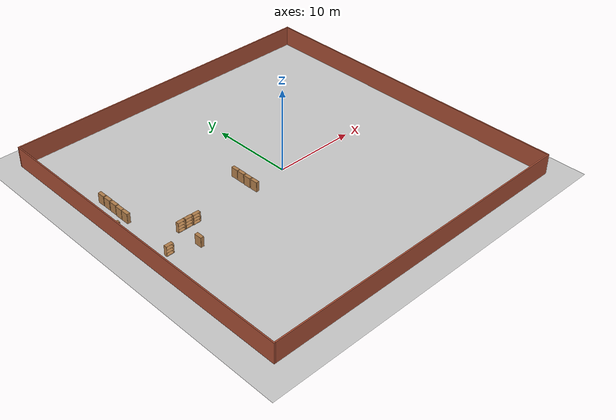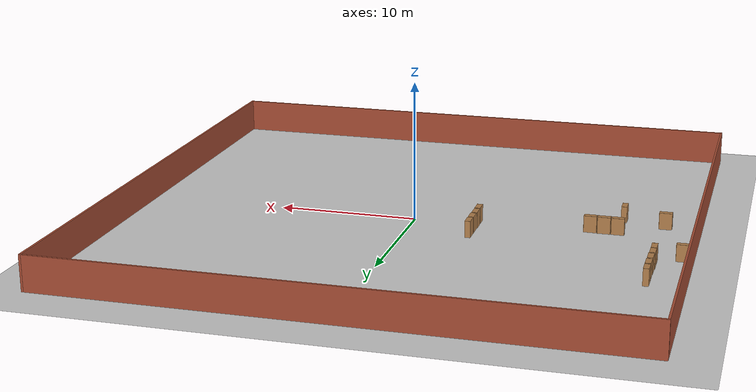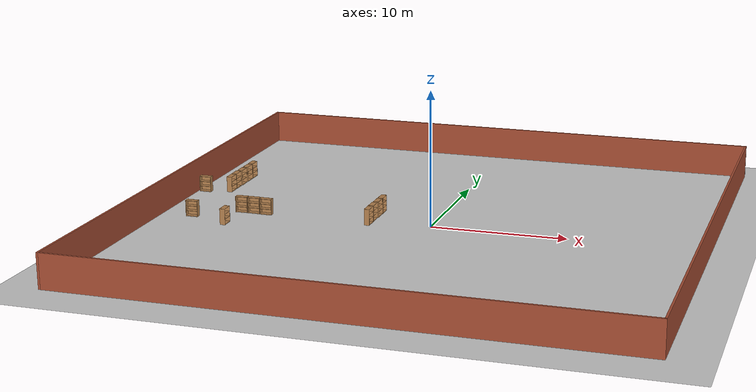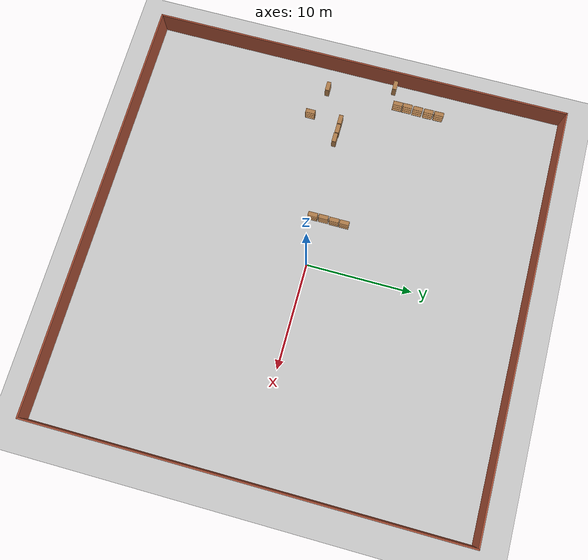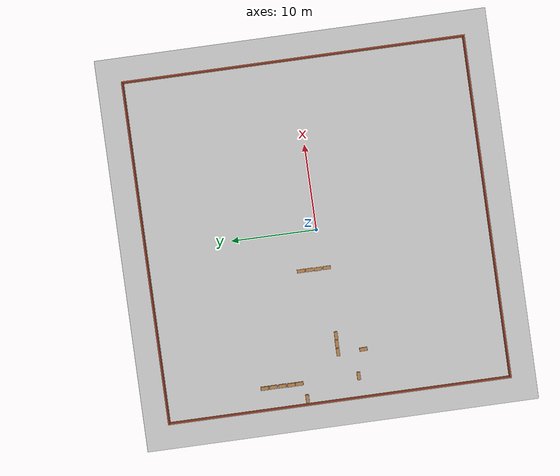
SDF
<sdf version="1.6">
 <world name="default">
  <model name="ground_plane">
   <static>1</static>
   <link name="link">
    <collision name="collision">
     <geometry><plane><normal>0 0 1</normal><size>100 100</size></plane></geometry>
     <surface>
      <contact><collide_bitmask>65535</collide_bitmask></contact>
      <friction><ode><mu>100</mu><mu2>50</mu2></ode></friction>
     </surface>
    </collision>
    <visual name="visual">
     <cast_shadows>0</cast_shadows>
     <geometry><plane><normal>0 0 1</normal><size>100 100</size></plane></geometry>
     <material>
      <script><uri>file://media/materials/scripts/gazebo.material</uri><name>Gazebo/Grey</name></script>
     </material>
    </visual>
   </link>
  </model>
  <model name="bookshelf_clone">
   <static>1</static>
   <link name="link">
    <inertial><mass>1</mass></inertial>
    <collision name="back">
     <pose>0 0.005 0.6 0 -0 0</pose>
     <geometry><box><size>0.9 0.01 1.2</size></box></geometry>
    </collision>
    <visual name="visual1">
     <pose>0 0.005 0.6 0 -0 0</pose>
     <geometry><box><size>0.9 0.01 1.2</size></box></geometry>
     <material>
      <script><uri>file://media/materials/scripts/gazebo.material</uri><name>Gazebo/Wood</name></script>
     </material>
    </visual>
    <collision name="left_side">
     <pose>0.45 -0.195 0.6 0 -0 0</pose>
     <geometry><box><size>0.02 0.4 1.2</size></box></geometry>
    </collision>
    <visual name="visual2">
     <pose>0.45 -0.195 0.6 0 -0 0</pose>
     <geometry><box><size>0.02 0.4 1.2</size></box></geometry>
     <material>
      <script><uri>file://media/materials/scripts/gazebo.material</uri><name>Gazebo/Wood</name></script>
     </material>
    </visual>
    <collision name="right_side">
     <pose>-0.45 -0.195 0.6 0 -0 0</pose>
     <geometry><box><size>0.02 0.4 1.2</size></box></geometry>
    </collision>
    <visual name="visual3">
     <pose>-0.45 -0.195 0.6 0 -0 0</pose>
     <geometry><box><size>0.02 0.4 1.2</size></box></geometry>
     <material>
      <script><uri>file://media/materials/scripts/gazebo.material</uri><name>Gazebo/Wood</name></script>
     </material>
    </visual>
    <collision name="bottom">
     <pose>0 -0.195 0.03 0 -0 0</pose>
     <geometry><box><size>0.88 0.4 0.06</size></box></geometry>
    </collision>
    <visual name="visual4">
     <pose>0 -0.195 0.03 0 -0 0</pose>
     <geometry><box><size>0.88 0.4 0.06</size></box></geometry>
     <material>
      <script><uri>file://media/materials/scripts/gazebo.material</uri><name>Gazebo/Wood</name></script>
     </material>
    </visual>
    <collision name="top">
     <pose>0 -0.195 1.19 0 -0 0</pose>
     <geometry><box><size>0.88 0.4 0.02</size></box></geometry>
    </collision>
    <visual name="visual5">
     <pose>0 -0.195 1.19 0 -0 0</pose>
     <geometry><box><size>0.88 0.4 0.02</size></box></geometry>
     <material>
      <script><uri>file://media/materials/scripts/gazebo.material</uri><name>Gazebo/Wood</name></script>
     </material>
    </visual>
    <collision name="low_shelf">
     <pose>0 -0.195 0.43 0 -0 0</pose>
     <geometry><box><size>0.88 0.4 0.02</size></box></geometry>
    </collision>
    <visual name="visual6">
     <pose>0 -0.195 0.43 0 -0 0</pose>
     <geometry><box><size>0.88 0.4 0.02</size></box></geometry>
     <material>
      <script><uri>file://media/materials/scripts/gazebo.material</uri><name>Gazebo/Wood</name></script>
     </material>
    </visual>
    <collision name="high_shelf">
     <pose>0 -0.195 0.8 0 -0 0</pose>
     <geometry><box><size>0.88 0.4 0.02</size></box></geometry>
    </collision>
    <visual name="visual7">
     <pose>0 -0.195 0.8 0 -0 0</pose>
     <geometry><box><size>0.88 0.4 0.02</size></box></geometry>
     <material>
      <script><uri>file://media/materials/scripts/gazebo.material</uri><name>Gazebo/Wood</name></script>
     </material>
    </visual>
   </link>
   <pose>-17.5274 -2.373 0 0 -0 0</pose>
  </model>
  <model name="bookshelf_clone_clone_0_clone_clone">
   <static>1</static>
   <link name="link">
    <inertial><mass>1</mass></inertial>
    <collision name="back">
     <pose>0 0.005 0.6 0 -0 0</pose>
     <geometry><box><size>0.9 0.01 1.2</size></box></geometry>
    </collision>
    <visual name="visual1">
     <pose>0 0.005 0.6 0 -0 0</pose>
     <geometry><box><size>0.9 0.01 1.2</size></box></geometry>
     <material>
      <script><uri>file://media/materials/scripts/gazebo.material</uri><name>Gazebo/Wood</name></script>
     </material>
    </visual>
    <collision name="left_side">
     <pose>0.45 -0.195 0.6 0 -0 0</pose>
     <geometry><box><size>0.02 0.4 1.2</size></box></geometry>
    </collision>
    <visual name="visual2">
     <pose>0.45 -0.195 0.6 0 -0 0</pose>
     <geometry><box><size>0.02 0.4 1.2</size></box></geometry>
     <material>
      <script><uri>file://media/materials/scripts/gazebo.material</uri><name>Gazebo/Wood</name></script>
     </material>
    </visual>
    <collision name="right_side">
     <pose>-0.45 -0.195 0.6 0 -0 0</pose>
     <geometry><box><size>0.02 0.4 1.2</size></box></geometry>
    </collision>
    <visual name="visual3">
     <pose>-0.45 -0.195 0.6 0 -0 0</pose>
     <geometry><box><size>0.02 0.4 1.2</size></box></geometry>
     <material>
      <script><uri>file://media/materials/scripts/gazebo.material</uri><name>Gazebo/Wood</name></script>
     </material>
    </visual>
    <collision name="bottom">
     <pose>0 -0.195 0.03 0 -0 0</pose>
     <geometry><box><size>0.88 0.4 0.06</size></box></geometry>
    </collision>
    <visual name="visual4">
     <pose>0 -0.195 0.03 0 -0 0</pose>
     <geometry><box><size>0.88 0.4 0.06</size></box></geometry>
     <material>
      <script><uri>file://media/materials/scripts/gazebo.material</uri><name>Gazebo/Wood</name></script>
     </material>
    </visual>
    <collision name="top">
     <pose>0 -0.195 1.19 0 -0 0</pose>
     <geometry><box><size>0.88 0.4 0.02</size></box></geometry>
    </collision>
    <visual name="visual5">
     <pose>0 -0.195 1.19 0 -0 0</pose>
     <geometry><box><size>0.88 0.4 0.02</size></box></geometry>
     <material>
      <script><uri>file://media/materials/scripts/gazebo.material</uri><name>Gazebo/Wood</name></script>
     </material>
    </visual>
    <collision name="low_shelf">
     <pose>0 -0.195 0.43 0 -0 0</pose>
     <geometry><box><size>0.88 0.4 0.02</size></box></geometry>
    </collision>
    <visual name="visual6">
     <pose>0 -0.195 0.43 0 -0 0</pose>
     <geometry><box><size>0.88 0.4 0.02</size></box></geometry>
     <material>
      <script><uri>file://media/materials/scripts/gazebo.material</uri><name>Gazebo/Wood</name></script>
     </material>
    </visual>
    <collision name="high_shelf">
     <pose>0 -0.195 0.8 0 -0 0</pose>
     <geometry><box><size>0.88 0.4 0.02</size></box></geometry>
    </collision>
    <visual name="visual7">
     <pose>0 -0.195 0.8 0 -0 0</pose>
     <geometry><box><size>0.88 0.4 0.02</size></box></geometry>
     <material>
      <script><uri>file://media/materials/scripts/gazebo.material</uri><name>Gazebo/Wood</name></script>
     </material>
    </visual>
   </link>
   <pose>-17.7016 5.36171 0 0 -0 1.58018</pose>
  </model>
  <model name="bookshelf_clone_clone_0_clone_clone_0">
   <static>1</static>
   <link name="link">
    <inertial><mass>1</mass></inertial>
    <collision name="back">
     <pose>0 0.005 0.6 0 -0 0</pose>
     <geometry><box><size>0.9 0.01 1.2</size></box></geometry>
    </collision>
    <visual name="visual1">
     <pose>0 0.005 0.6 0 -0 0</pose>
     <geometry><box><size>0.9 0.01 1.2</size></box></geometry>
     <material>
      <script><uri>file://media/materials/scripts/gazebo.material</uri><name>Gazebo/Wood</name></script>
     </material>
    </visual>
    <collision name="left_side">
     <pose>0.45 -0.195 0.6 0 -0 0</pose>
     <geometry><box><size>0.02 0.4 1.2</size></box></geometry>
    </collision>
    <visual name="visual2">
     <pose>0.45 -0.195 0.6 0 -0 0</pose>
     <geometry><box><size>0.02 0.4 1.2</size></box></geometry>
     <material>
      <script><uri>file://media/materials/scripts/gazebo.material</uri><name>Gazebo/Wood</name></script>
     </material>
    </visual>
    <collision name="right_side">
     <pose>-0.45 -0.195 0.6 0 -0 0</pose>
     <geometry><box><size>0.02 0.4 1.2</size></box></geometry>
    </collision>
    <visual name="visual3">
     <pose>-0.45 -0.195 0.6 0 -0 0</pose>
     <geometry><box><size>0.02 0.4 1.2</size></box></geometry>
     <material>
      <script><uri>file://media/materials/scripts/gazebo.material</uri><name>Gazebo/Wood</name></script>
     </material>
    </visual>
    <collision name="bottom">
     <pose>0 -0.195 0.03 0 -0 0</pose>
     <geometry><box><size>0.88 0.4 0.06</size></box></geometry>
    </collision>
    <visual name="visual4">
     <pose>0 -0.195 0.03 0 -0 0</pose>
     <geometry><box><size>0.88 0.4 0.06</size></box></geometry>
     <material>
      <script><uri>file://media/materials/scripts/gazebo.material</uri><name>Gazebo/Wood</name></script>
     </material>
    </visual>
    <collision name="top">
     <pose>0 -0.195 1.19 0 -0 0</pose>
     <geometry><box><size>0.88 0.4 0.02</size></box></geometry>
    </collision>
    <visual name="visual5">
     <pose>0 -0.195 1.19 0 -0 0</pose>
     <geometry><box><size>0.88 0.4 0.02</size></box></geometry>
     <material>
      <script><uri>file://media/materials/scripts/gazebo.material</uri><name>Gazebo/Wood</name></script>
     </material>
    </visual>
    <collision name="low_shelf">
     <pose>0 -0.195 0.43 0 -0 0</pose>
     <geometry><box><size>0.88 0.4 0.02</size></box></geometry>
    </collision>
    <visual name="visual6">
     <pose>0 -0.195 0.43 0 -0 0</pose>
     <geometry><box><size>0.88 0.4 0.02</size></box></geometry>
     <material>
      <script><uri>file://media/materials/scripts/gazebo.material</uri><name>Gazebo/Wood</name></script>
     </material>
    </visual>
    <collision name="high_shelf">
     <pose>0 -0.195 0.8 0 -0 0</pose>
     <geometry><box><size>0.88 0.4 0.02</size></box></geometry>
    </collision>
    <visual name="visual7">
     <pose>0 -0.195 0.8 0 -0 0</pose>
     <geometry><box><size>0.88 0.4 0.02</size></box></geometry>
     <material>
      <script><uri>file://media/materials/scripts/gazebo.material</uri><name>Gazebo/Wood</name></script>
     </material>
    </visual>
   </link>
   <pose>-17.6926 4.40593 0 0 -0 1.58018</pose>
  </model>
  <model name="bookshelf_clone_clone_0_clone_clone_1">
   <static>1</static>
   <link name="link">
    <inertial><mass>1</mass></inertial>
    <collision name="back">
     <pose>0 0.005 0.6 0 -0 0</pose>
     <geometry><box><size>0.9 0.01 1.2</size></box></geometry>
    </collision>
    <visual name="visual1">
     <pose>0 0.005 0.6 0 -0 0</pose>
     <geometry><box><size>0.9 0.01 1.2</size></box></geometry>
     <material>
      <script><uri>file://media/materials/scripts/gazebo.material</uri><name>Gazebo/Wood</name></script>
     </material>
    </visual>
    <collision name="left_side">
     <pose>0.45 -0.195 0.6 0 -0 0</pose>
     <geometry><box><size>0.02 0.4 1.2</size></box></geometry>
    </collision>
    <visual name="visual2">
     <pose>0.45 -0.195 0.6 0 -0 0</pose>
     <geometry><box><size>0.02 0.4 1.2</size></box></geometry>
     <material>
      <script><uri>file://media/materials/scripts/gazebo.material</uri><name>Gazebo/Wood</name></script>
     </material>
    </visual>
    <collision name="right_side">
     <pose>-0.45 -0.195 0.6 0 -0 0</pose>
     <geometry><box><size>0.02 0.4 1.2</size></box></geometry>
    </collision>
    <visual name="visual3">
     <pose>-0.45 -0.195 0.6 0 -0 0</pose>
     <geometry><box><size>0.02 0.4 1.2</size></box></geometry>
     <material>
      <script><uri>file://media/materials/scripts/gazebo.material</uri><name>Gazebo/Wood</name></script>
     </material>
    </visual>
    <collision name="bottom">
     <pose>0 -0.195 0.03 0 -0 0</pose>
     <geometry><box><size>0.88 0.4 0.06</size></box></geometry>
    </collision>
    <visual name="visual4">
     <pose>0 -0.195 0.03 0 -0 0</pose>
     <geometry><box><size>0.88 0.4 0.06</size></box></geometry>
     <material>
      <script><uri>file://media/materials/scripts/gazebo.material</uri><name>Gazebo/Wood</name></script>
     </material>
    </visual>
    <collision name="top">
     <pose>0 -0.195 1.19 0 -0 0</pose>
     <geometry><box><size>0.88 0.4 0.02</size></box></geometry>
    </collision>
    <visual name="visual5">
     <pose>0 -0.195 1.19 0 -0 0</pose>
     <geometry><box><size>0.88 0.4 0.02</size></box></geometry>
     <material>
      <script><uri>file://media/materials/scripts/gazebo.material</uri><name>Gazebo/Wood</name></script>
     </material>
    </visual>
    <collision name="low_shelf">
     <pose>0 -0.195 0.43 0 -0 0</pose>
     <geometry><box><size>0.88 0.4 0.02</size></box></geometry>
    </collision>
    <visual name="visual6">
     <pose>0 -0.195 0.43 0 -0 0</pose>
     <geometry><box><size>0.88 0.4 0.02</size></box></geometry>
     <material>
      <script><uri>file://media/materials/scripts/gazebo.material</uri><name>Gazebo/Wood</name></script>
     </material>
    </visual>
    <collision name="high_shelf">
     <pose>0 -0.195 0.8 0 -0 0</pose>
     <geometry><box><size>0.88 0.4 0.02</size></box></geometry>
    </collision>
    <visual name="visual7">
     <pose>0 -0.195 0.8 0 -0 0</pose>
     <geometry><box><size>0.88 0.4 0.02</size></box></geometry>
     <material>
      <script><uri>file://media/materials/scripts/gazebo.material</uri><name>Gazebo/Wood</name></script>
     </material>
    </visual>
   </link>
   <pose>-17.6741 6.39169 0 0 -0 1.58018</pose>
  </model>
  <model name="bookshelf_clone_clone_0_clone_clone_2">
   <static>1</static>
   <link name="link">
    <inertial><mass>1</mass></inertial>
    <collision name="back">
     <pose>0 0.005 0.6 0 -0 0</pose>
     <geometry><box><size>0.9 0.01 1.2</size></box></geometry>
    </collision>
    <visual name="visual1">
     <pose>0 0.005 0.6 0 -0 0</pose>
     <geometry><box><size>0.9 0.01 1.2</size></box></geometry>
     <material>
      <script><uri>file://media/materials/scripts/gazebo.material</uri><name>Gazebo/Wood</name></script>
     </material>
    </visual>
    <collision name="left_side">
     <pose>0.45 -0.195 0.6 0 -0 0</pose>
     <geometry><box><size>0.02 0.4 1.2</size></box></geometry>
    </collision>
    <visual name="visual2">
     <pose>0.45 -0.195 0.6 0 -0 0</pose>
     <geometry><box><size>0.02 0.4 1.2</size></box></geometry>
     <material>
      <script><uri>file://media/materials/scripts/gazebo.material</uri><name>Gazebo/Wood</name></script>
     </material>
    </visual>
    <collision name="right_side">
     <pose>-0.45 -0.195 0.6 0 -0 0</pose>
     <geometry><box><size>0.02 0.4 1.2</size></box></geometry>
    </collision>
    <visual name="visual3">
     <pose>-0.45 -0.195 0.6 0 -0 0</pose>
     <geometry><box><size>0.02 0.4 1.2</size></box></geometry>
     <material>
      <script><uri>file://media/materials/scripts/gazebo.material</uri><name>Gazebo/Wood</name></script>
     </material>
    </visual>
    <collision name="bottom">
     <pose>0 -0.195 0.03 0 -0 0</pose>
     <geometry><box><size>0.88 0.4 0.06</size></box></geometry>
    </collision>
    <visual name="visual4">
     <pose>0 -0.195 0.03 0 -0 0</pose>
     <geometry><box><size>0.88 0.4 0.06</size></box></geometry>
     <material>
      <script><uri>file://media/materials/scripts/gazebo.material</uri><name>Gazebo/Wood</name></script>
     </material>
    </visual>
    <collision name="top">
     <pose>0 -0.195 1.19 0 -0 0</pose>
     <geometry><box><size>0.88 0.4 0.02</size></box></geometry>
    </collision>
    <visual name="visual5">
     <pose>0 -0.195 1.19 0 -0 0</pose>
     <geometry><box><size>0.88 0.4 0.02</size></box></geometry>
     <material>
      <script><uri>file://media/materials/scripts/gazebo.material</uri><name>Gazebo/Wood</name></script>
     </material>
    </visual>
    <collision name="low_shelf">
     <pose>0 -0.195 0.43 0 -0 0</pose>
     <geometry><box><size>0.88 0.4 0.02</size></box></geometry>
    </collision>
    <visual name="visual6">
     <pose>0 -0.195 0.43 0 -0 0</pose>
     <geometry><box><size>0.88 0.4 0.02</size></box></geometry>
     <material>
      <script><uri>file://media/materials/scripts/gazebo.material</uri><name>Gazebo/Wood</name></script>
     </material>
    </visual>
    <collision name="high_shelf">
     <pose>0 -0.195 0.8 0 -0 0</pose>
     <geometry><box><size>0.88 0.4 0.02</size></box></geometry>
    </collision>
    <visual name="visual7">
     <pose>0 -0.195 0.8 0 -0 0</pose>
     <geometry><box><size>0.88 0.4 0.02</size></box></geometry>
     <material>
      <script><uri>file://media/materials/scripts/gazebo.material</uri><name>Gazebo/Wood</name></script>
     </material>
    </visual>
   </link>
   <pose>-17.6649 7.44946 0 0 -0 1.58018</pose>
  </model>
  <model name="bookshelf_clone_clone_0_clone_clone_3">
   <static>1</static>
   <link name="link">
    <inertial><mass>1</mass></inertial>
    <collision name="back">
     <pose>0 0.005 0.6 0 -0 0</pose>
     <geometry><box><size>0.9 0.01 1.2</size></box></geometry>
    </collision>
    <visual name="visual1">
     <pose>0 0.005 0.6 0 -0 0</pose>
     <geometry><box><size>0.9 0.01 1.2</size></box></geometry>
     <material>
      <script><uri>file://media/materials/scripts/gazebo.material</uri><name>Gazebo/Wood</name></script>
     </material>
    </visual>
    <collision name="left_side">
     <pose>0.45 -0.195 0.6 0 -0 0</pose>
     <geometry><box><size>0.02 0.4 1.2</size></box></geometry>
    </collision>
    <visual name="visual2">
     <pose>0.45 -0.195 0.6 0 -0 0</pose>
     <geometry><box><size>0.02 0.4 1.2</size></box></geometry>
     <material>
      <script><uri>file://media/materials/scripts/gazebo.material</uri><name>Gazebo/Wood</name></script>
     </material>
    </visual>
    <collision name="right_side">
     <pose>-0.45 -0.195 0.6 0 -0 0</pose>
     <geometry><box><size>0.02 0.4 1.2</size></box></geometry>
    </collision>
    <visual name="visual3">
     <pose>-0.45 -0.195 0.6 0 -0 0</pose>
     <geometry><box><size>0.02 0.4 1.2</size></box></geometry>
     <material>
      <script><uri>file://media/materials/scripts/gazebo.material</uri><name>Gazebo/Wood</name></script>
     </material>
    </visual>
    <collision name="bottom">
     <pose>0 -0.195 0.03 0 -0 0</pose>
     <geometry><box><size>0.88 0.4 0.06</size></box></geometry>
    </collision>
    <visual name="visual4">
     <pose>0 -0.195 0.03 0 -0 0</pose>
     <geometry><box><size>0.88 0.4 0.06</size></box></geometry>
     <material>
      <script><uri>file://media/materials/scripts/gazebo.material</uri><name>Gazebo/Wood</name></script>
     </material>
    </visual>
    <collision name="top">
     <pose>0 -0.195 1.19 0 -0 0</pose>
     <geometry><box><size>0.88 0.4 0.02</size></box></geometry>
    </collision>
    <visual name="visual5">
     <pose>0 -0.195 1.19 0 -0 0</pose>
     <geometry><box><size>0.88 0.4 0.02</size></box></geometry>
     <material>
      <script><uri>file://media/materials/scripts/gazebo.material</uri><name>Gazebo/Wood</name></script>
     </material>
    </visual>
    <collision name="low_shelf">
     <pose>0 -0.195 0.43 0 -0 0</pose>
     <geometry><box><size>0.88 0.4 0.02</size></box></geometry>
    </collision>
    <visual name="visual6">
     <pose>0 -0.195 0.43 0 -0 0</pose>
     <geometry><box><size>0.88 0.4 0.02</size></box></geometry>
     <material>
      <script><uri>file://media/materials/scripts/gazebo.material</uri><name>Gazebo/Wood</name></script>
     </material>
    </visual>
    <collision name="high_shelf">
     <pose>0 -0.195 0.8 0 -0 0</pose>
     <geometry><box><size>0.88 0.4 0.02</size></box></geometry>
    </collision>
    <visual name="visual7">
     <pose>0 -0.195 0.8 0 -0 0</pose>
     <geometry><box><size>0.88 0.4 0.02</size></box></geometry>
     <material>
      <script><uri>file://media/materials/scripts/gazebo.material</uri><name>Gazebo/Wood</name></script>
     </material>
    </visual>
   </link>
   <pose>-17.6741 8.4702 0 0 -0 1.58018</pose>
  </model>
  <model name="bookshelf_clone_clone_3">
   <static>1</static>
   <link name="link">
    <inertial><mass>1</mass></inertial>
    <collision name="back">
     <pose>0 0.005 0.6 0 -0 0</pose>
     <geometry><box><size>0.9 0.01 1.2</size></box></geometry>
    </collision>
    <visual name="visual1">
     <pose>0 0.005 0.6 0 -0 0</pose>
     <geometry><box><size>0.9 0.01 1.2</size></box></geometry>
     <material>
      <script><uri>file://media/materials/scripts/gazebo.material</uri><name>Gazebo/Wood</name></script>
     </material>
    </visual>
    <collision name="left_side">
     <pose>0.45 -0.195 0.6 0 -0 0</pose>
     <geometry><box><size>0.02 0.4 1.2</size></box></geometry>
    </collision>
    <visual name="visual2">
     <pose>0.45 -0.195 0.6 0 -0 0</pose>
     <geometry><box><size>0.02 0.4 1.2</size></box></geometry>
     <material>
      <script><uri>file://media/materials/scripts/gazebo.material</uri><name>Gazebo/Wood</name></script>
     </material>
    </visual>
    <collision name="right_side">
     <pose>-0.45 -0.195 0.6 0 -0 0</pose>
     <geometry><box><size>0.02 0.4 1.2</size></box></geometry>
    </collision>
    <visual name="visual3">
     <pose>-0.45 -0.195 0.6 0 -0 0</pose>
     <geometry><box><size>0.02 0.4 1.2</size></box></geometry>
     <material>
      <script><uri>file://media/materials/scripts/gazebo.material</uri><name>Gazebo/Wood</name></script>
     </material>
    </visual>
    <collision name="bottom">
     <pose>0 -0.195 0.03 0 -0 0</pose>
     <geometry><box><size>0.88 0.4 0.06</size></box></geometry>
    </collision>
    <visual name="visual4">
     <pose>0 -0.195 0.03 0 -0 0</pose>
     <geometry><box><size>0.88 0.4 0.06</size></box></geometry>
     <material>
      <script><uri>file://media/materials/scripts/gazebo.material</uri><name>Gazebo/Wood</name></script>
     </material>
    </visual>
    <collision name="top">
     <pose>0 -0.195 1.19 0 -0 0</pose>
     <geometry><box><size>0.88 0.4 0.02</size></box></geometry>
    </collision>
    <visual name="visual5">
     <pose>0 -0.195 1.19 0 -0 0</pose>
     <geometry><box><size>0.88 0.4 0.02</size></box></geometry>
     <material>
      <script><uri>file://media/materials/scripts/gazebo.material</uri><name>Gazebo/Wood</name></script>
     </material>
    </visual>
    <collision name="low_shelf">
     <pose>0 -0.195 0.43 0 -0 0</pose>
     <geometry><box><size>0.88 0.4 0.02</size></box></geometry>
    </collision>
    <visual name="visual6">
     <pose>0 -0.195 0.43 0 -0 0</pose>
     <geometry><box><size>0.88 0.4 0.02</size></box></geometry>
     <material>
      <script><uri>file://media/materials/scripts/gazebo.material</uri><name>Gazebo/Wood</name></script>
     </material>
    </visual>
    <collision name="high_shelf">
     <pose>0 -0.195 0.8 0 -0 0</pose>
     <geometry><box><size>0.88 0.4 0.02</size></box></geometry>
    </collision>
    <visual name="visual7">
     <pose>0 -0.195 0.8 0 -0 0</pose>
     <geometry><box><size>0.88 0.4 0.02</size></box></geometry>
     <material>
      <script><uri>file://media/materials/scripts/gazebo.material</uri><name>Gazebo/Wood</name></script>
     </material>
    </visual>
   </link>
   <pose>-19.329 3.89641 0 0 -0 0</pose>
  </model>
  <model name="bookshelf_clone_clone_0_clone_clone_0_clone">
   <static>1</static>
   <link name="link">
    <inertial><mass>1</mass></inertial>
    <collision name="back">
     <pose>0 0.005 0.6 0 -0 0</pose>
     <geometry><box><size>0.9 0.01 1.2</size></box></geometry>
    </collision>
    <visual name="visual1">
     <pose>0 0.005 0.6 0 -0 0</pose>
     <geometry><box><size>0.9 0.01 1.2</size></box></geometry>
     <material>
      <script><uri>file://media/materials/scripts/gazebo.material</uri><name>Gazebo/Wood</name></script>
     </material>
    </visual>
    <collision name="left_side">
     <pose>0.45 -0.195 0.6 0 -0 0</pose>
     <geometry><box><size>0.02 0.4 1.2</size></box></geometry>
    </collision>
    <visual name="visual2">
     <pose>0.45 -0.195 0.6 0 -0 0</pose>
     <geometry><box><size>0.02 0.4 1.2</size></box></geometry>
     <material>
      <script><uri>file://media/materials/scripts/gazebo.material</uri><name>Gazebo/Wood</name></script>
     </material>
    </visual>
    <collision name="right_side">
     <pose>-0.45 -0.195 0.6 0 -0 0</pose>
     <geometry><box><size>0.02 0.4 1.2</size></box></geometry>
    </collision>
    <visual name="visual3">
     <pose>-0.45 -0.195 0.6 0 -0 0</pose>
     <geometry><box><size>0.02 0.4 1.2</size></box></geometry>
     <material>
      <script><uri>file://media/materials/scripts/gazebo.material</uri><name>Gazebo/Wood</name></script>
     </material>
    </visual>
    <collision name="bottom">
     <pose>0 -0.195 0.03 0 -0 0</pose>
     <geometry><box><size>0.88 0.4 0.06</size></box></geometry>
    </collision>
    <visual name="visual4">
     <pose>0 -0.195 0.03 0 -0 0</pose>
     <geometry><box><size>0.88 0.4 0.06</size></box></geometry>
     <material>
      <script><uri>file://media/materials/scripts/gazebo.material</uri><name>Gazebo/Wood</name></script>
     </material>
    </visual>
    <collision name="top">
     <pose>0 -0.195 1.19 0 -0 0</pose>
     <geometry><box><size>0.88 0.4 0.02</size></box></geometry>
    </collision>
    <visual name="visual5">
     <pose>0 -0.195 1.19 0 -0 0</pose>
     <geometry><box><size>0.88 0.4 0.02</size></box></geometry>
     <material>
      <script><uri>file://media/materials/scripts/gazebo.material</uri><name>Gazebo/Wood</name></script>
     </material>
    </visual>
    <collision name="low_shelf">
     <pose>0 -0.195 0.43 0 -0 0</pose>
     <geometry><box><size>0.88 0.4 0.02</size></box></geometry>
    </collision>
    <visual name="visual6">
     <pose>0 -0.195 0.43 0 -0 0</pose>
     <geometry><box><size>0.88 0.4 0.02</size></box></geometry>
     <material>
      <script><uri>file://media/materials/scripts/gazebo.material</uri><name>Gazebo/Wood</name></script>
     </material>
    </visual>
    <collision name="high_shelf">
     <pose>0 -0.195 0.8 0 -0 0</pose>
     <geometry><box><size>0.88 0.4 0.02</size></box></geometry>
    </collision>
    <visual name="visual7">
     <pose>0 -0.195 0.8 0 -0 0</pose>
     <geometry><box><size>0.88 0.4 0.02</size></box></geometry>
     <material>
      <script><uri>file://media/materials/scripts/gazebo.material</uri><name>Gazebo/Wood</name></script>
     </material>
    </visual>
   </link>
   <pose>-14.7167 -3.5316 0 0 -0 1.58018</pose>
  </model>
  <model name="bookshelf_clone_clone_2_clone">
   <static>1</static>
   <link name="link">
    <inertial><mass>1</mass></inertial>
    <collision name="back">
     <pose>0 0.005 0.6 0 -0 0</pose>
     <geometry><box><size>0.9 0.01 1.2</size></box></geometry>
    </collision>
    <visual name="visual1">
     <pose>0 0.005 0.6 0 -0 0</pose>
     <geometry><box><size>0.9 0.01 1.2</size></box></geometry>
     <material>
      <script><uri>file://media/materials/scripts/gazebo.material</uri><name>Gazebo/Wood</name></script>
     </material>
    </visual>
    <collision name="left_side">
     <pose>0.45 -0.195 0.6 0 -0 0</pose>
     <geometry><box><size>0.02 0.4 1.2</size></box></geometry>
    </collision>
    <visual name="visual2">
     <pose>0.45 -0.195 0.6 0 -0 0</pose>
     <geometry><box><size>0.02 0.4 1.2</size></box></geometry>
     <material>
      <script><uri>file://media/materials/scripts/gazebo.material</uri><name>Gazebo/Wood</name></script>
     </material>
    </visual>
    <collision name="right_side">
     <pose>-0.45 -0.195 0.6 0 -0 0</pose>
     <geometry><box><size>0.02 0.4 1.2</size></box></geometry>
    </collision>
    <visual name="visual3">
     <pose>-0.45 -0.195 0.6 0 -0 0</pose>
     <geometry><box><size>0.02 0.4 1.2</size></box></geometry>
     <material>
      <script><uri>file://media/materials/scripts/gazebo.material</uri><name>Gazebo/Wood</name></script>
     </material>
    </visual>
    <collision name="bottom">
     <pose>0 -0.195 0.03 0 -0 0</pose>
     <geometry><box><size>0.88 0.4 0.06</size></box></geometry>
    </collision>
    <visual name="visual4">
     <pose>0 -0.195 0.03 0 -0 0</pose>
     <geometry><box><size>0.88 0.4 0.06</size></box></geometry>
     <material>
      <script><uri>file://media/materials/scripts/gazebo.material</uri><name>Gazebo/Wood</name></script>
     </material>
    </visual>
    <collision name="top">
     <pose>0 -0.195 1.19 0 -0 0</pose>
     <geometry><box><size>0.88 0.4 0.02</size></box></geometry>
    </collision>
    <visual name="visual5">
     <pose>0 -0.195 1.19 0 -0 0</pose>
     <geometry><box><size>0.88 0.4 0.02</size></box></geometry>
     <material>
      <script><uri>file://media/materials/scripts/gazebo.material</uri><name>Gazebo/Wood</name></script>
     </material>
    </visual>
    <collision name="low_shelf">
     <pose>0 -0.195 0.43 0 -0 0</pose>
     <geometry><box><size>0.88 0.4 0.02</size></box></geometry>
    </collision>
    <visual name="visual6">
     <pose>0 -0.195 0.43 0 -0 0</pose>
     <geometry><box><size>0.88 0.4 0.02</size></box></geometry>
     <material>
      <script><uri>file://media/materials/scripts/gazebo.material</uri><name>Gazebo/Wood</name></script>
     </material>
    </visual>
    <collision name="high_shelf">
     <pose>0 -0.195 0.8 0 -0 0</pose>
     <geometry><box><size>0.88 0.4 0.02</size></box></geometry>
    </collision>
    <visual name="visual7">
     <pose>0 -0.195 0.8 0 -0 0</pose>
     <geometry><box><size>0.88 0.4 0.02</size></box></geometry>
     <material>
      <script><uri>file://media/materials/scripts/gazebo.material</uri><name>Gazebo/Wood</name></script>
     </material>
    </visual>
   </link>
   <pose>-14.4458 -0.359166 0 0 -0 0</pose>
  </model>
  <model name="bookshelf_clone_clone_2_clone_0">
   <static>1</static>
   <link name="link">
    <inertial><mass>1</mass></inertial>
    <collision name="back">
     <pose>0 0.005 0.6 0 -0 0</pose>
     <geometry><box><size>0.9 0.01 1.2</size></box></geometry>
    </collision>
    <visual name="visual1">
     <pose>0 0.005 0.6 0 -0 0</pose>
     <geometry><box><size>0.9 0.01 1.2</size></box></geometry>
     <material>
      <script><uri>file://media/materials/scripts/gazebo.material</uri><name>Gazebo/Wood</name></script>
     </material>
    </visual>
    <collision name="left_side">
     <pose>0.45 -0.195 0.6 0 -0 0</pose>
     <geometry><box><size>0.02 0.4 1.2</size></box></geometry>
    </collision>
    <visual name="visual2">
     <pose>0.45 -0.195 0.6 0 -0 0</pose>
     <geometry><box><size>0.02 0.4 1.2</size></box></geometry>
     <material>
      <script><uri>file://media/materials/scripts/gazebo.material</uri><name>Gazebo/Wood</name></script>
     </material>
    </visual>
    <collision name="right_side">
     <pose>-0.45 -0.195 0.6 0 -0 0</pose>
     <geometry><box><size>0.02 0.4 1.2</size></box></geometry>
    </collision>
    <visual name="visual3">
     <pose>-0.45 -0.195 0.6 0 -0 0</pose>
     <geometry><box><size>0.02 0.4 1.2</size></box></geometry>
     <material>
      <script><uri>file://media/materials/scripts/gazebo.material</uri><name>Gazebo/Wood</name></script>
     </material>
    </visual>
    <collision name="bottom">
     <pose>0 -0.195 0.03 0 -0 0</pose>
     <geometry><box><size>0.88 0.4 0.06</size></box></geometry>
    </collision>
    <visual name="visual4">
     <pose>0 -0.195 0.03 0 -0 0</pose>
     <geometry><box><size>0.88 0.4 0.06</size></box></geometry>
     <material>
      <script><uri>file://media/materials/scripts/gazebo.material</uri><name>Gazebo/Wood</name></script>
     </material>
    </visual>
    <collision name="top">
     <pose>0 -0.195 1.19 0 -0 0</pose>
     <geometry><box><size>0.88 0.4 0.02</size></box></geometry>
    </collision>
    <visual name="visual5">
     <pose>0 -0.195 1.19 0 -0 0</pose>
     <geometry><box><size>0.88 0.4 0.02</size></box></geometry>
     <material>
      <script><uri>file://media/materials/scripts/gazebo.material</uri><name>Gazebo/Wood</name></script>
     </material>
    </visual>
    <collision name="low_shelf">
     <pose>0 -0.195 0.43 0 -0 0</pose>
     <geometry><box><size>0.88 0.4 0.02</size></box></geometry>
    </collision>
    <visual name="visual6">
     <pose>0 -0.195 0.43 0 -0 0</pose>
     <geometry><box><size>0.88 0.4 0.02</size></box></geometry>
     <material>
      <script><uri>file://media/materials/scripts/gazebo.material</uri><name>Gazebo/Wood</name></script>
     </material>
    </visual>
    <collision name="high_shelf">
     <pose>0 -0.195 0.8 0 -0 0</pose>
     <geometry><box><size>0.88 0.4 0.02</size></box></geometry>
    </collision>
    <visual name="visual7">
     <pose>0 -0.195 0.8 0 -0 0</pose>
     <geometry><box><size>0.88 0.4 0.02</size></box></geometry>
     <material>
      <script><uri>file://media/materials/scripts/gazebo.material</uri><name>Gazebo/Wood</name></script>
     </material>
    </visual>
   </link>
   <pose>-13.4772 -0.35819 0 0 -0 0</pose>
  </model>
  <model name="bookshelf_clone_clone_2_clone_1">
   <static>1</static>
   <link name="link">
    <inertial><mass>1</mass></inertial>
    <collision name="back">
     <pose>0 0.005 0.6 0 -0 0</pose>
     <geometry><box><size>0.9 0.01 1.2</size></box></geometry>
    </collision>
    <visual name="visual1">
     <pose>0 0.005 0.6 0 -0 0</pose>
     <geometry><box><size>0.9 0.01 1.2</size></box></geometry>
     <material>
      <script><uri>file://media/materials/scripts/gazebo.material</uri><name>Gazebo/Wood</name></script>
     </material>
    </visual>
    <collision name="left_side">
     <pose>0.45 -0.195 0.6 0 -0 0</pose>
     <geometry><box><size>0.02 0.4 1.2</size></box></geometry>
    </collision>
    <visual name="visual2">
     <pose>0.45 -0.195 0.6 0 -0 0</pose>
     <geometry><box><size>0.02 0.4 1.2</size></box></geometry>
     <material>
      <script><uri>file://media/materials/scripts/gazebo.material</uri><name>Gazebo/Wood</name></script>
     </material>
    </visual>
    <collision name="right_side">
     <pose>-0.45 -0.195 0.6 0 -0 0</pose>
     <geometry><box><size>0.02 0.4 1.2</size></box></geometry>
    </collision>
    <visual name="visual3">
     <pose>-0.45 -0.195 0.6 0 -0 0</pose>
     <geometry><box><size>0.02 0.4 1.2</size></box></geometry>
     <material>
      <script><uri>file://media/materials/scripts/gazebo.material</uri><name>Gazebo/Wood</name></script>
     </material>
    </visual>
    <collision name="bottom">
     <pose>0 -0.195 0.03 0 -0 0</pose>
     <geometry><box><size>0.88 0.4 0.06</size></box></geometry>
    </collision>
    <visual name="visual4">
     <pose>0 -0.195 0.03 0 -0 0</pose>
     <geometry><box><size>0.88 0.4 0.06</size></box></geometry>
     <material>
      <script><uri>file://media/materials/scripts/gazebo.material</uri><name>Gazebo/Wood</name></script>
     </material>
    </visual>
    <collision name="top">
     <pose>0 -0.195 1.19 0 -0 0</pose>
     <geometry><box><size>0.88 0.4 0.02</size></box></geometry>
    </collision>
    <visual name="visual5">
     <pose>0 -0.195 1.19 0 -0 0</pose>
     <geometry><box><size>0.88 0.4 0.02</size></box></geometry>
     <material>
      <script><uri>file://media/materials/scripts/gazebo.material</uri><name>Gazebo/Wood</name></script>
     </material>
    </visual>
    <collision name="low_shelf">
     <pose>0 -0.195 0.43 0 -0 0</pose>
     <geometry><box><size>0.88 0.4 0.02</size></box></geometry>
    </collision>
    <visual name="visual6">
     <pose>0 -0.195 0.43 0 -0 0</pose>
     <geometry><box><size>0.88 0.4 0.02</size></box></geometry>
     <material>
      <script><uri>file://media/materials/scripts/gazebo.material</uri><name>Gazebo/Wood</name></script>
     </material>
    </visual>
    <collision name="high_shelf">
     <pose>0 -0.195 0.8 0 -0 0</pose>
     <geometry><box><size>0.88 0.4 0.02</size></box></geometry>
    </collision>
    <visual name="visual7">
     <pose>0 -0.195 0.8 0 -0 0</pose>
     <geometry><box><size>0.88 0.4 0.02</size></box></geometry>
     <material>
      <script><uri>file://media/materials/scripts/gazebo.material</uri><name>Gazebo/Wood</name></script>
     </material>
    </visual>
   </link>
   <pose>-12.5139 -0.395559 0 0 -0 0</pose>
  </model>
  <model name="bookshelf_clone_clone_0_clone_clone_0_clone_2">
   <static>1</static>
   <link name="link">
    <inertial><mass>1</mass></inertial>
    <collision name="back">
     <pose>0 0.005 0.6 0 -0 0</pose>
     <geometry><box><size>0.9 0.01 1.2</size></box></geometry>
    </collision>
    <visual name="visual1">
     <pose>0 0.005 0.6 0 -0 0</pose>
     <geometry><box><size>0.9 0.01 1.2</size></box></geometry>
     <material>
      <script><uri>file://media/materials/scripts/gazebo.material</uri><name>Gazebo/Wood</name></script>
     </material>
    </visual>
    <collision name="left_side">
     <pose>0.45 -0.195 0.6 0 -0 0</pose>
     <geometry><box><size>0.02 0.4 1.2</size></box></geometry>
    </collision>
    <visual name="visual2">
     <pose>0.45 -0.195 0.6 0 -0 0</pose>
     <geometry><box><size>0.02 0.4 1.2</size></box></geometry>
     <material>
      <script><uri>file://media/materials/scripts/gazebo.material</uri><name>Gazebo/Wood</name></script>
     </material>
    </visual>
    <collision name="right_side">
     <pose>-0.45 -0.195 0.6 0 -0 0</pose>
     <geometry><box><size>0.02 0.4 1.2</size></box></geometry>
    </collision>
    <visual name="visual3">
     <pose>-0.45 -0.195 0.6 0 -0 0</pose>
     <geometry><box><size>0.02 0.4 1.2</size></box></geometry>
     <material>
      <script><uri>file://media/materials/scripts/gazebo.material</uri><name>Gazebo/Wood</name></script>
     </material>
    </visual>
    <collision name="bottom">
     <pose>0 -0.195 0.03 0 -0 0</pose>
     <geometry><box><size>0.88 0.4 0.06</size></box></geometry>
    </collision>
    <visual name="visual4">
     <pose>0 -0.195 0.03 0 -0 0</pose>
     <geometry><box><size>0.88 0.4 0.06</size></box></geometry>
     <material>
      <script><uri>file://media/materials/scripts/gazebo.material</uri><name>Gazebo/Wood</name></script>
     </material>
    </visual>
    <collision name="top">
     <pose>0 -0.195 1.19 0 -0 0</pose>
     <geometry><box><size>0.88 0.4 0.02</size></box></geometry>
    </collision>
    <visual name="visual5">
     <pose>0 -0.195 1.19 0 -0 0</pose>
     <geometry><box><size>0.88 0.4 0.02</size></box></geometry>
     <material>
      <script><uri>file://media/materials/scripts/gazebo.material</uri><name>Gazebo/Wood</name></script>
     </material>
    </visual>
    <collision name="low_shelf">
     <pose>0 -0.195 0.43 0 -0 0</pose>
     <geometry><box><size>0.88 0.4 0.02</size></box></geometry>
    </collision>
    <visual name="visual6">
     <pose>0 -0.195 0.43 0 -0 0</pose>
     <geometry><box><size>0.88 0.4 0.02</size></box></geometry>
     <material>
      <script><uri>file://media/materials/scripts/gazebo.material</uri><name>Gazebo/Wood</name></script>
     </material>
    </visual>
    <collision name="high_shelf">
     <pose>0 -0.195 0.8 0 -0 0</pose>
     <geometry><box><size>0.88 0.4 0.02</size></box></geometry>
    </collision>
    <visual name="visual7">
     <pose>0 -0.195 0.8 0 -0 0</pose>
     <geometry><box><size>0.88 0.4 0.02</size></box></geometry>
     <material>
      <script><uri>file://media/materials/scripts/gazebo.material</uri><name>Gazebo/Wood</name></script>
     </material>
    </visual>
   </link>
   <pose>-4.71181 2.42279 0 0 -0 1.58018</pose>
  </model>
  <model name="bookshelf_clone_clone_0_clone_clone_0_clone_3">
   <static>1</static>
   <link name="link">
    <inertial><mass>1</mass></inertial>
    <collision name="back">
     <pose>0 0.005 0.6 0 -0 0</pose>
     <geometry><box><size>0.9 0.01 1.2</size></box></geometry>
    </collision>
    <visual name="visual1">
     <pose>0 0.005 0.6 0 -0 0</pose>
     <geometry><box><size>0.9 0.01 1.2</size></box></geometry>
     <material>
      <script><uri>file://media/materials/scripts/gazebo.material</uri><name>Gazebo/Wood</name></script>
     </material>
    </visual>
    <collision name="left_side">
     <pose>0.45 -0.195 0.6 0 -0 0</pose>
     <geometry><box><size>0.02 0.4 1.2</size></box></geometry>
    </collision>
    <visual name="visual2">
     <pose>0.45 -0.195 0.6 0 -0 0</pose>
     <geometry><box><size>0.02 0.4 1.2</size></box></geometry>
     <material>
      <script><uri>file://media/materials/scripts/gazebo.material</uri><name>Gazebo/Wood</name></script>
     </material>
    </visual>
    <collision name="right_side">
     <pose>-0.45 -0.195 0.6 0 -0 0</pose>
     <geometry><box><size>0.02 0.4 1.2</size></box></geometry>
    </collision>
    <visual name="visual3">
     <pose>-0.45 -0.195 0.6 0 -0 0</pose>
     <geometry><box><size>0.02 0.4 1.2</size></box></geometry>
     <material>
      <script><uri>file://media/materials/scripts/gazebo.material</uri><name>Gazebo/Wood</name></script>
     </material>
    </visual>
    <collision name="bottom">
     <pose>0 -0.195 0.03 0 -0 0</pose>
     <geometry><box><size>0.88 0.4 0.06</size></box></geometry>
    </collision>
    <visual name="visual4">
     <pose>0 -0.195 0.03 0 -0 0</pose>
     <geometry><box><size>0.88 0.4 0.06</size></box></geometry>
     <material>
      <script><uri>file://media/materials/scripts/gazebo.material</uri><name>Gazebo/Wood</name></script>
     </material>
    </visual>
    <collision name="top">
     <pose>0 -0.195 1.19 0 -0 0</pose>
     <geometry><box><size>0.88 0.4 0.02</size></box></geometry>
    </collision>
    <visual name="visual5">
     <pose>0 -0.195 1.19 0 -0 0</pose>
     <geometry><box><size>0.88 0.4 0.02</size></box></geometry>
     <material>
      <script><uri>file://media/materials/scripts/gazebo.material</uri><name>Gazebo/Wood</name></script>
     </material>
    </visual>
    <collision name="low_shelf">
     <pose>0 -0.195 0.43 0 -0 0</pose>
     <geometry><box><size>0.88 0.4 0.02</size></box></geometry>
    </collision>
    <visual name="visual6">
     <pose>0 -0.195 0.43 0 -0 0</pose>
     <geometry><box><size>0.88 0.4 0.02</size></box></geometry>
     <material>
      <script><uri>file://media/materials/scripts/gazebo.material</uri><name>Gazebo/Wood</name></script>
     </material>
    </visual>
    <collision name="high_shelf">
     <pose>0 -0.195 0.8 0 -0 0</pose>
     <geometry><box><size>0.88 0.4 0.02</size></box></geometry>
    </collision>
    <visual name="visual7">
     <pose>0 -0.195 0.8 0 -0 0</pose>
     <geometry><box><size>0.88 0.4 0.02</size></box></geometry>
     <material>
      <script><uri>file://media/materials/scripts/gazebo.material</uri><name>Gazebo/Wood</name></script>
     </material>
    </visual>
   </link>
   <pose>-4.71568 1.4428 0 0 -0 1.58018</pose>
  </model>
  <model name="bookshelf_clone_clone_0_clone_clone_0_clone_4">
   <static>1</static>
   <link name="link">
    <inertial><mass>1</mass></inertial>
    <collision name="back">
     <pose>0 0.005 0.6 0 -0 0</pose>
     <geometry><box><size>0.9 0.01 1.2</size></box></geometry>
    </collision>
    <visual name="visual1">
     <pose>0 0.005 0.6 0 -0 0</pose>
     <geometry><box><size>0.9 0.01 1.2</size></box></geometry>
     <material>
      <script><uri>file://media/materials/scripts/gazebo.material</uri><name>Gazebo/Wood</name></script>
     </material>
    </visual>
    <collision name="left_side">
     <pose>0.45 -0.195 0.6 0 -0 0</pose>
     <geometry><box><size>0.02 0.4 1.2</size></box></geometry>
    </collision>
    <visual name="visual2">
     <pose>0.45 -0.195 0.6 0 -0 0</pose>
     <geometry><box><size>0.02 0.4 1.2</size></box></geometry>
     <material>
      <script><uri>file://media/materials/scripts/gazebo.material</uri><name>Gazebo/Wood</name></script>
     </material>
    </visual>
    <collision name="right_side">
     <pose>-0.45 -0.195 0.6 0 -0 0</pose>
     <geometry><box><size>0.02 0.4 1.2</size></box></geometry>
    </collision>
    <visual name="visual3">
     <pose>-0.45 -0.195 0.6 0 -0 0</pose>
     <geometry><box><size>0.02 0.4 1.2</size></box></geometry>
     <material>
      <script><uri>file://media/materials/scripts/gazebo.material</uri><name>Gazebo/Wood</name></script>
     </material>
    </visual>
    <collision name="bottom">
     <pose>0 -0.195 0.03 0 -0 0</pose>
     <geometry><box><size>0.88 0.4 0.06</size></box></geometry>
    </collision>
    <visual name="visual4">
     <pose>0 -0.195 0.03 0 -0 0</pose>
     <geometry><box><size>0.88 0.4 0.06</size></box></geometry>
     <material>
      <script><uri>file://media/materials/scripts/gazebo.material</uri><name>Gazebo/Wood</name></script>
     </material>
    </visual>
    <collision name="top">
     <pose>0 -0.195 1.19 0 -0 0</pose>
     <geometry><box><size>0.88 0.4 0.02</size></box></geometry>
    </collision>
    <visual name="visual5">
     <pose>0 -0.195 1.19 0 -0 0</pose>
     <geometry><box><size>0.88 0.4 0.02</size></box></geometry>
     <material>
      <script><uri>file://media/materials/scripts/gazebo.material</uri><name>Gazebo/Wood</name></script>
     </material>
    </visual>
    <collision name="low_shelf">
     <pose>0 -0.195 0.43 0 -0 0</pose>
     <geometry><box><size>0.88 0.4 0.02</size></box></geometry>
    </collision>
    <visual name="visual6">
     <pose>0 -0.195 0.43 0 -0 0</pose>
     <geometry><box><size>0.88 0.4 0.02</size></box></geometry>
     <material>
      <script><uri>file://media/materials/scripts/gazebo.material</uri><name>Gazebo/Wood</name></script>
     </material>
    </visual>
    <collision name="high_shelf">
     <pose>0 -0.195 0.8 0 -0 0</pose>
     <geometry><box><size>0.88 0.4 0.02</size></box></geometry>
    </collision>
    <visual name="visual7">
     <pose>0 -0.195 0.8 0 -0 0</pose>
     <geometry><box><size>0.88 0.4 0.02</size></box></geometry>
     <material>
      <script><uri>file://media/materials/scripts/gazebo.material</uri><name>Gazebo/Wood</name></script>
     </material>
    </visual>
   </link>
   <pose>-4.73977 0.422899 0 0 -0 1.58018</pose>
  </model>
  <model name="bookshelf_clone_clone_0_clone_clone_0_clone_5">
   <static>1</static>
   <link name="link">
    <inertial><mass>1</mass></inertial>
    <collision name="back">
     <pose>0 0.005 0.6 0 -0 0</pose>
     <geometry><box><size>0.9 0.01 1.2</size></box></geometry>
    </collision>
    <visual name="visual1">
     <pose>0 0.005 0.6 0 -0 0</pose>
     <geometry><box><size>0.9 0.01 1.2</size></box></geometry>
     <material>
      <script><uri>file://media/materials/scripts/gazebo.material</uri><name>Gazebo/Wood</name></script>
     </material>
    </visual>
    <collision name="left_side">
     <pose>0.45 -0.195 0.6 0 -0 0</pose>
     <geometry><box><size>0.02 0.4 1.2</size></box></geometry>
    </collision>
    <visual name="visual2">
     <pose>0.45 -0.195 0.6 0 -0 0</pose>
     <geometry><box><size>0.02 0.4 1.2</size></box></geometry>
     <material>
      <script><uri>file://media/materials/scripts/gazebo.material</uri><name>Gazebo/Wood</name></script>
     </material>
    </visual>
    <collision name="right_side">
     <pose>-0.45 -0.195 0.6 0 -0 0</pose>
     <geometry><box><size>0.02 0.4 1.2</size></box></geometry>
    </collision>
    <visual name="visual3">
     <pose>-0.45 -0.195 0.6 0 -0 0</pose>
     <geometry><box><size>0.02 0.4 1.2</size></box></geometry>
     <material>
      <script><uri>file://media/materials/scripts/gazebo.material</uri><name>Gazebo/Wood</name></script>
     </material>
    </visual>
    <collision name="bottom">
     <pose>0 -0.195 0.03 0 -0 0</pose>
     <geometry><box><size>0.88 0.4 0.06</size></box></geometry>
    </collision>
    <visual name="visual4">
     <pose>0 -0.195 0.03 0 -0 0</pose>
     <geometry><box><size>0.88 0.4 0.06</size></box></geometry>
     <material>
      <script><uri>file://media/materials/scripts/gazebo.material</uri><name>Gazebo/Wood</name></script>
     </material>
    </visual>
    <collision name="top">
     <pose>0 -0.195 1.19 0 -0 0</pose>
     <geometry><box><size>0.88 0.4 0.02</size></box></geometry>
    </collision>
    <visual name="visual5">
     <pose>0 -0.195 1.19 0 -0 0</pose>
     <geometry><box><size>0.88 0.4 0.02</size></box></geometry>
     <material>
      <script><uri>file://media/materials/scripts/gazebo.material</uri><name>Gazebo/Wood</name></script>
     </material>
    </visual>
    <collision name="low_shelf">
     <pose>0 -0.195 0.43 0 -0 0</pose>
     <geometry><box><size>0.88 0.4 0.02</size></box></geometry>
    </collision>
    <visual name="visual6">
     <pose>0 -0.195 0.43 0 -0 0</pose>
     <geometry><box><size>0.88 0.4 0.02</size></box></geometry>
     <material>
      <script><uri>file://media/materials/scripts/gazebo.material</uri><name>Gazebo/Wood</name></script>
     </material>
    </visual>
    <collision name="high_shelf">
     <pose>0 -0.195 0.8 0 -0 0</pose>
     <geometry><box><size>0.88 0.4 0.02</size></box></geometry>
    </collision>
    <visual name="visual7">
     <pose>0 -0.195 0.8 0 -0 0</pose>
     <geometry><box><size>0.88 0.4 0.02</size></box></geometry>
     <material>
      <script><uri>file://media/materials/scripts/gazebo.material</uri><name>Gazebo/Wood</name></script>
     </material>
    </visual>
   </link>
   <pose>-4.72376 -0.597134 0 0 -0 1.58018</pose>
  </model>
  <model name="wall_40_0">
   <link name="Wall_0">
    <collision name="Wall_0_Collision">
     <geometry><box><size>40.15 0.15 2.5</size></box></geometry>
     <pose>0 0 1.25 0 -0 0</pose>
    </collision>
    <visual name="Wall_0_Visual">
     <pose>0 0 1.25 0 -0 0</pose>
     <geometry><box><size>40.15 0.15 2.5</size></box></geometry>
     <material>
      <script><uri>file://media/materials/scripts/gazebo.material</uri><name>Gazebo/Bricks</name></script>
      <ambient>1 1 1 1</ambient>
     </material>
     <meta><layer>0</layer></meta>
    </visual>
    <pose>0 20 0 0 -0 3.14159</pose>
   </link>
   <link name="Wall_2">
    <collision name="Wall_2_Collision">
     <geometry><box><size>40.15 0.15 2.5</size></box></geometry>
     <pose>0 0 1.25 0 -0 0</pose>
    </collision>
    <visual name="Wall_2_Visual">
     <pose>0 0 1.25 0 -0 0</pose>
     <geometry><box><size>40.15 0.15 2.5</size></box></geometry>
     <material>
      <script><uri>file://media/materials/scripts/gazebo.material</uri><name>Gazebo/Bricks</name></script>
      <ambient>1 1 1 1</ambient>
     </material>
     <meta><layer>0</layer></meta>
    </visual>
    <pose>-20 0 0 0 -0 -1.5708</pose>
   </link>
   <link name="Wall_4">
    <collision name="Wall_4_Collision">
     <geometry><box><size>40.15 0.15 2.5</size></box></geometry>
     <pose>0 0 1.25 0 -0 0</pose>
    </collision>
    <visual name="Wall_4_Visual">
     <pose>0 0 1.25 0 -0 0</pose>
     <geometry><box><size>40.15 0.15 2.5</size></box></geometry>
     <material>
      <script><uri>file://media/materials/scripts/gazebo.material</uri><name>Gazebo/Bricks</name></script>
      <ambient>1 1 1 1</ambient>
     </material>
     <meta><layer>0</layer></meta>
    </visual>
    <pose>0 -20 0 0 -0 3.14159</pose>
   </link>
   <link name="Wall_9">
    <collision name="Wall_9_Collision">
     <geometry><box><size>40.15 0.15 2.5</size></box></geometry>
     <pose>0 0 1.25 0 -0 0</pose>
    </collision>
    <visual name="Wall_9_Visual">
     <pose>0 0 1.25 0 -0 0</pose>
     <geometry><box><size>40.15 0.15 2.5</size></box></geometry>
     <material>
      <script><uri>file://media/materials/scripts/gazebo.material</uri><name>Gazebo/Bricks</name></script>
      <ambient>1 1 1 1</ambient>
     </material>
     <meta><layer>0</layer></meta>
    </visual>
    <pose>20 0 0 0 -0 1.5708</pose>
   </link>
   <static>1</static>
  </model>
 </world>
</sdf>
